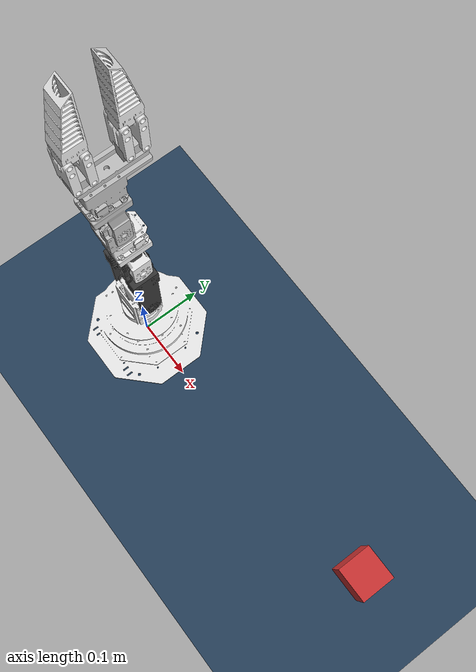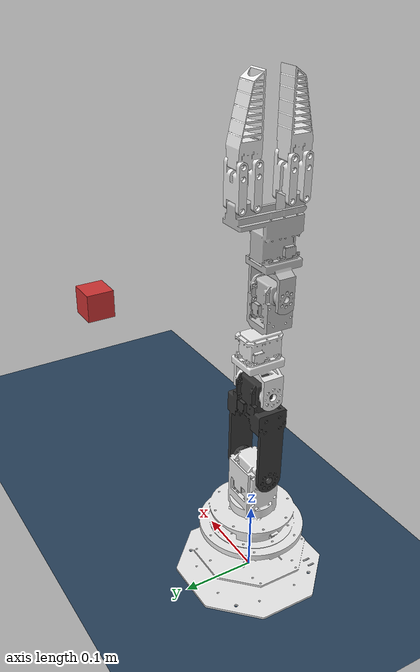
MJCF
<mujoco model="dynamixel_arm scene">
  <include file="dynamixel_arm.xml"/>

  <option integrator="implicitfast" cone="elliptic" impratio="10"/>

  <statistic center="0.4 0 0.4" extent="1"/>

  <visual>
    <headlight diffuse="0.6 0.6 0.6" ambient="0.1 0.1 0.1" specular="0 0 0"/>
    <rgba haze="0.15 0.25 0.35 1"/>
    <global azimuth="120" elevation="-20"/>
  </visual>

  <asset>
    <texture type="skybox" builtin="gradient" rgb1="0.3 0.5 0.7" rgb2="0 0 0" width="512" height="3072"/>
    <texture type="2d" name="groundplane" builtin="checker" mark="edge" rgb1="0.2 0.3 0.4" rgb2="0.1 0.2 0.3"
      markrgb="0.8 0.8 0.8" width="300" height="300"/>
    <material name="groundplane" texture="groundplane" texuniform="true" texrepeat="5 5" reflectance="0.2"/>
  </asset>

  <worldbody>
    <light pos="0 0 1.5" dir="0 0 -1" directional="true"/>
    <geom name="floor" size="0 0 0.05" type="plane" material="groundplane" friction="1 0.005 0.0001" contype="3" conaffinity="3"/>
    <body name="box" pos="0.5 0.0 0.2">
      <joint name="box_joint" type="free"/>
      <geom type="box" size="0.025 0.025 0.025" rgba="0.8 0.2 0.2 1" mass="0.05" friction="1.0 0.005 0.0001" contype="3" conaffinity="3"/>
    </body>
  </worldbody>

  <keyframe>
    <!-- qpos order: 11 arm/gripper joints + 7 box freejoint (3 pos + 4 quat) -->
    <!-- ctrl order: 6 robot actuators (joint1..joint5 + gripper) -->
    <key name="home"
         qpos="0.0 1.0 1.5 0.0 1.0 0.0 0.0 0.0 0.0 0.0 0.0 0.5 0.0 0.2 1 0 0 0"
         ctrl="0.0 1.0 1.5 0.0 1.0 0.0"/>
  </keyframe>
</mujoco>

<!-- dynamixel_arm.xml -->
<mujoco model="dynamixel_arm">
  <compiler angle="radian" meshdir="../meshes" autolimits="true"/>

  <default>
    <!-- Prevent robot self-collision -->
    <geom contype="1" conaffinity="2"/>
    <!-- Add internal joint damping, motor rotor inertia, and gear friction -->
    <joint damping="0.5" armature="0.01" frictionloss="0.1"/>
  </default>

  <equality>
    <!-- Gripper Multiplier -->
    <joint joint1="outlink2" joint2="gripper" polycoef="0 0.006 0 0 0"/>
    <joint joint1="inlink2" joint2="gripper" polycoef="0 0.006 0 0 0"/>
    <joint joint1="outlink2_upper" joint2="gripper" polycoef="0 0.006 0 0 0"/>

    <!-- Gripper Multiplier -->
    <joint joint1="outlink1" joint2="gripper" polycoef="0 -0.006 0 0 0"/>
    <joint joint1="inlink1" joint2="gripper" polycoef="0 -0.006 0 0 0"/>
    <joint joint1="outlink1_upper" joint2="gripper" polycoef="0 -0.006 0 0 0"/>
  </equality>

  <asset>
    <mesh name="base_link" content_type="model/stl" file="base_link.stl" scale="0.001 0.001 0.001"/>
    <mesh name="link_1_1" content_type="model/stl" file="link_1_1.stl" scale="0.001 0.001 0.001"/>
    <mesh name="link_2_1" content_type="model/stl" file="link_2_1.stl" scale="0.001 0.001 0.001"/>
    <mesh name="link_3_1" content_type="model/stl" file="link_3_1.stl" scale="0.001 0.001 0.001"/>
    <mesh name="link_4_1" content_type="model/stl" file="link_4_1.stl" scale="0.001 0.001 0.001"/>
    <mesh name="link_5_1" content_type="model/stl" file="link_5_1.stl" scale="0.001 0.001 0.001"/>
    <mesh name="linkout_1_1" content_type="model/stl" file="linkout_1_1.stl" scale="0.001 0.001 0.001"/>
    <mesh name="linkin_1_1" content_type="model/stl" file="linkin_1_1.stl" scale="0.001 0.001 0.001"/>
    <mesh name="linkin_2_1" content_type="model/stl" file="linkin_2_1.stl" scale="0.001 0.001 0.001"/>
    <mesh name="linkout_2_1" content_type="model/stl" file="linkout_2_1.stl" scale="0.001 0.001 0.001"/>
    <mesh name="fin_2_1" content_type="model/stl" file="fin_2_1.stl" scale="0.001 0.001 0.001"/>
    <mesh name="fin_1_1" content_type="model/stl" file="fin_1_1.stl" scale="0.001 0.001 0.001"/>
  </asset>

  <worldbody>
    <geom type="mesh" rgba="0.921569 0.921569 0.921569 1" mesh="base_link"/>
    <body name="link_1_1" pos="-0.000245 4.5e-05 0.1003">
      <inertial pos="-0.00021127 1.59561e-05 0.0368947" quat="0.707102 -0.00607207 -0.00575967 0.707062" mass="0.191421" diaginertia="0.000199165 0.000187648 6.96883e-05"/>
      <joint name="joint1" pos="0 0 0" axis="0 0.000467 1" range="-3.14159 3.14159" actuatorfrcrange="-100 100"/>
      <geom pos="0.000245 -4.5e-05 -0.1003" quat="1 0 0 0" type="mesh" rgba="0.921569 0.921569 0.921569 1" mesh="link_1_1"/>
      <body name="link_2_1" pos="-0.026 3.3e-05 0.0726">
        <inertial pos="0.0259159 3.98674e-05 0.0843701" quat="0.70699 -0.0128758 -0.0125457 0.706995" mass="0.13764" diaginertia="0.000264415 0.00021033 8.17553e-05"/>
        <joint name="joint2" pos="0 0 0" axis="-1 0 0" range="-1.5708 1.5708" actuatorfrcrange="-100 100"/>
        <geom pos="0.026245 -7.8e-05 -0.1729" quat="1 0 0 0" type="mesh" rgba="0.211765 0.211765 0.211765 1" mesh="link_2_1"/>
        <body name="link_3_1" pos="0.0024 5.8e-05 0.123912">
          <inertial pos="0.0238919 0.000390179 0.0396462" quat="0.708798 -0.0184697 -0.0277374 0.704624" mass="0.0865814" diaginertia="5.82227e-05 5.2786e-05 3.22081e-05"/>
          <joint name="joint3" pos="0 0 0" axis="-1 0 0" range="-1.5708 1.5708" actuatorfrcrange="-100 100"/>
          <geom pos="0.023845 -0.000136 -0.296812" quat="1 0 0 0" type="mesh" rgba="0.921569 0.921569 0.921569 1" mesh="link_3_1"/>
          <body name="link_4_1" pos="0.0235 -0.011563 0.078206">
            <inertial pos="-4.72924e-05 1.27362e-05 0.0276346" quat="0.70706 -0.0081507 -0.00782058 0.707064" mass="0.061991" diaginertia="2.59844e-05 2.25313e-05 1.3478e-05"/>
            <joint name="joint4" pos="0 0 0" axis="0 0.000467 1" range="-3.14159 3.14159" actuatorfrcrange="-100 100"/>
            <geom pos="0.000345 0.011427 -0.375018" quat="1 0 0 0" type="mesh" rgba="0.74902 0.74902 0.74902 1" mesh="link_4_1"/>
            <body name="link_5_1" pos="-0.0227 2.2e-05 0.0465">
              <inertial pos="0.0224751 0.00327341 0.0595492" quat="0.991497 -0.129987 0.00525098 0.00296856" mass="0.125379" diaginertia="0.000159147 0.000132758 6.40726e-05"/>
              <joint name="joint5" pos="0 0 0" axis="-1 0 0" range="-1.5708 1.5708" actuatorfrcrange="-100 100"/>
              <geom pos="0.023045 0.011405 -0.421518" quat="1 0 0 0" type="mesh" rgba="0.74902 0.74902 0.74902 1" mesh="link_5_1"/>

              <body name="gripper_link" pos="0.0226 0.011942 0.240986">
                <inertial pos="0 0 0" mass="0.01" diaginertia="1e-05 1e-05 1e-05"/>
                <joint name="gripper" pos="0 0 0" axis="0 0 1" limited="true" range="-65.5269905 94.98867187" actuatorfrcrange="-100 100"/> <!-- Gripper Multiplier -->
              </body>

              <body name="linkout_1_1" pos="0.0313 -0.029351 0.106414">
                <inertial pos="-0.00874972 1.01774e-05 0.021282" quat="0.707107 -0.000163677 0.000163677 0.707107" mass="0.010668" diaginertia="2.51807e-06 1.66185e-06 1.04143e-06"/>
                <joint name="outlink2" pos="0 0 0" axis="-1 0 0" range="-0.575959 0.383972" actuatorfrcrange="-100 100"/>
                <geom pos="-0.008255 0.040756 -0.527932" quat="1 0 0 0" type="mesh" rgba="0.921569 0.921569 0.921569 1" mesh="linkout_1_1"/>
                <body name="fin_2_1" pos="0 2.1e-05 0.045">
                  <inertial pos="-0.00869972 0.0111368 0.0258989" quat="0.998385 -0.0568136 0 0" mass="0.0281716" diaginertia="1.75973e-05 1.73283e-05 3.04432e-06"/>
                  <joint name="outlink2_upper" pos="0 0 0" axis="1 0 0" range="-0.575959 0.383972" actuatorfrcrange="-100 100"/>
                  <geom pos="-0.008255 0.040735 -0.572932" quat="1 0 0 0" type="mesh" rgba="0.921569 0.921569 0.921569 1" mesh="fin_2_1"/>
                </body>
              </body>
              <body name="linkin_1_1" pos="0.0313 -0.010351 0.106405">
                <inertial pos="-0.00874972 -6.80366e-05 0.0214526" quat="0.707105 -0.00163264 0.00163264 0.707105" mass="0.00990296" diaginertia="2.49115e-06 1.6304e-06 1.03345e-06"/>
                <joint name="inlink2" pos="0 0 0" axis="-1 0 0" range="-0.575959 0.383972" actuatorfrcrange="-100 100"/>
                <geom pos="-0.008255 0.021756 -0.527923" quat="1 0 0 0" type="mesh" rgba="0.921569 0.921569 0.921569 1" mesh="linkin_1_1"/>
              </body>
              <body name="linkout_2_1" pos="0.0313 0.052649 0.106375">
                <inertial pos="-0.00874972 1.01685e-05 0.0212827" quat="0.707107 -0.000163677 0.000163677 0.707107" mass="0.010668" diaginertia="2.51807e-06 1.66185e-06 1.04143e-06"/>
                <joint name="outlink1" pos="0 0 0" axis="-1 0 0" range="-0.383972 0.575959" actuatorfrcrange="-100 100"/>
                <geom pos="-0.008255 -0.041244 -0.527893" quat="1 0 0 0" type="mesh" rgba="0.921569 0.921569 0.921569 1" mesh="linkout_2_1"/>
                <body name="fin_1_1" pos="0 2.1e-05 0.045">
                  <inertial pos="-0.00869972 -0.0108109 0.0259099" quat="0.99859 0.0530913 0 0" mass="0.0281715" diaginertia="1.75843e-05 1.73076e-05 3.05191e-06"/>
                  <joint name="outlink1_upper" pos="0 0 0" axis="1 0 0" range="-0.383972 0.575959" actuatorfrcrange="-100 100"/>
                  <geom pos="-0.008255 -0.041265 -0.572893" quat="1 0 0 0" type="mesh" rgba="0.921569 0.921569 0.921569 1" mesh="fin_1_1"/>
                </body>
              </body>
              <body name="linkin_2_1" pos="0.0313 0.033649 0.106384">
                <inertial pos="-0.00874972 8.84921e-05 0.021453" quat="0.707106 0.00130254 -0.00130254 0.707106" mass="0.00990296" diaginertia="2.49115e-06 1.6304e-06 1.03345e-06"/>
                <joint name="inlink1" pos="0 0 0" axis="-1 0 0" range="-0.383972 0.575959" actuatorfrcrange="-100 100"/>
                <geom pos="-0.008255 -0.022244 -0.527902" quat="1 0 0 0" type="mesh" rgba="0.921569 0.921569 0.921569 1" mesh="linkin_2_1"/>
              </body>
            </body>
          </body>
        </body>
      </body>
    </body>
  </worldbody>

  <actuator>
    <position name="joint1" joint="joint1" kp="300" kv="10" ctrlrange="-3.14159 3.14159" forcerange="-20 20"/>
    <position name="joint2" joint="joint2" kp="500" kv="15" ctrlrange="-1.5708 1.5708" forcerange="-35 35"/>
    <position name="joint3" joint="joint3" kp="400" kv="12" ctrlrange="-1.5708 1.5708" forcerange="-25 25"/>
    <position name="joint4" joint="joint4" kp="200" kv="8" ctrlrange="-3.14159 3.14159" forcerange="-15 15"/>
    <position name="joint5" joint="joint5" kp="150" kv="5" ctrlrange="-1.5708 1.5708" forcerange="-10 10"/>
    <position name="gripper" joint="gripper" kp="100" kv="3" ctrlrange="-65.5269905 94.98867187" forcerange="-10 10"/> <!-- Gripper Multiplier -->
  </actuator>
</mujoco>
